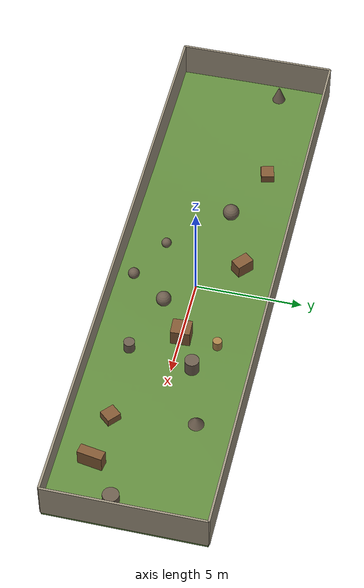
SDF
<?xml version='1.0' encoding='utf-8'?>
<sdf version="1.7">
  <world name="terrain_2">
    <gravity>0 0 -9.8</gravity>
    <plugin name="gazebo_ros_state" filename="libgazebo_ros_state.so">
      <ros>
        <namespace>/gazebo</namespace>
      </ros>
    </plugin>
    <physics name="ode_physics" type="ode">
      <max_step_size>0.001</max_step_size>
      <real_time_factor>1</real_time_factor>
      <real_time_update_rate>1000</real_time_update_rate>
      <ode>
        <solver>
          <type>quick</type>
          <iters>150</iters>
          <sor>1.3</sor>
        </solver>
        <constraints>
          <cfm>0</cfm>
          <erp>0.2</erp>
          <contact_max_correcting_vel>0.2</contact_max_correcting_vel>
          <contact_surface_layer>0.001</contact_surface_layer>
        </constraints>
      </ode>
    </physics>
    <light name="sun" type="directional">
      <pose>0 0 42 0 0 0</pose>
      <diffuse>0.92 0.91 0.88 1</diffuse>
      <specular>0.18 0.18 0.16 1</specular>
      <direction>-0.35 -0.28 -0.9</direction>
      <cast_shadows>true</cast_shadows>
    </light>
    <light name="fill" type="point">
      <pose>0 0 6 0 0 0</pose>
      <diffuse>0.35 0.36 0.34 1</diffuse>
      <specular>0.02 0.02 0.02 1</specular>
      <cast_shadows>false</cast_shadows>
      <attenuation>
        <range>80</range>
        <constant>0.5</constant>
        <linear>0.02</linear>
      </attenuation>
    </light>
    <scene>
      <ambient>0.52 0.56 0.48 1</ambient>
      <background>0.58 0.76 0.92 1</background>
    </scene>
    <gui fullscreen="false">
      <camera name="user_camera">
        <pose>18.9 -6.62727273 22.95 0 0.65 2.2</pose>
        <view_controller>orbit</view_controller>
      </camera>
    </gui>
    <model name="terrain_2_structure">
      <static>true</static>
      <link name="structure">
        <collision name="ground_surface_collision">
          <pose>0 0 0 0 0 0</pose>
          <geometry>
            <mesh>
              <uri>3DModel/terrain/surfaces/terrain_2_ground_surface.stl</uri>
            </mesh>
          </geometry>
          <max_contacts>40</max_contacts>
          <surface>
            <friction>
              <ode>
                <mu>8</mu>
                <mu2>8</mu2>
              </ode>
            </friction>
            <contact>
              <ode>
                <kp>1e7</kp>
                <kd>1000</kd>
                <max_vel>0.1</max_vel>
                <min_depth>0.001</min_depth>
              </ode>
            </contact>
          </surface>
        </collision>
        <visual name="ground_surface_visual">
          <pose>0 0 0 0 0 0</pose>
          <geometry>
            <mesh>
              <uri>3DModel/terrain/surfaces/terrain_2_ground_surface.stl</uri>
            </mesh>
          </geometry>
          <material>
            <ambient>0.38 0.54 0.24 1</ambient>
            <diffuse>0.38 0.54 0.24 1</diffuse>
          </material>
        </visual>
        <collision name="rock_box_0_collision">
          <pose>-7.36363636 1.84090909 0.247232489 0 0 0.252157693</pose>
          <geometry>
            <box>
              <size>0.675 0.613636364 0.398863636</size>
            </box>
          </geometry>
          <max_contacts>40</max_contacts>
          <surface>
            <friction>
              <ode>
                <mu>2</mu>
                <mu2>2</mu2>
              </ode>
            </friction>
            <contact>
              <ode>
                <kp>1e7</kp>
                <kd>1000</kd>
                <max_vel>0.1</max_vel>
                <min_depth>0.001</min_depth>
              </ode>
            </contact>
          </surface>
        </collision>
        <visual name="rock_box_0_visual">
          <pose>-7.36363636 1.84090909 0.247232489 0 0 0.252157693</pose>
          <geometry>
            <box>
              <size>0.675 0.613636364 0.398863636</size>
            </box>
          </geometry>
          <material>
            <ambient>0.50 0.34 0.20 1</ambient>
            <diffuse>0.50 0.34 0.20 1</diffuse>
          </material>
        </visual>
        <collision name="rock_round_1_collision">
          <pose>-1.84090909 -1.84090909 0.519823254 0 0 0</pose>
          <geometry>
            <sphere>
              <radius>0.23318181818181818</radius>
            </sphere>
          </geometry>
          <max_contacts>40</max_contacts>
          <surface>
            <friction>
              <ode>
                <mu>2</mu>
                <mu2>2</mu2>
              </ode>
            </friction>
            <contact>
              <ode>
                <kp>1e7</kp>
                <kd>1000</kd>
                <max_vel>0.1</max_vel>
                <min_depth>0.001</min_depth>
              </ode>
            </contact>
          </surface>
        </collision>
        <visual name="rock_round_1_visual">
          <pose>-1.84090909 -1.84090909 0.519823254 0 0 0</pose>
          <geometry>
            <sphere>
              <radius>0.23318181818181818</radius>
            </sphere>
          </geometry>
          <material>
            <ambient>0.42 0.36 0.30 1</ambient>
            <diffuse>0.42 0.36 0.30 1</diffuse>
          </material>
        </visual>
        <collision name="stone_column_2_collision">
          <pose>3.68181818 1.84090909 0.83729198 0 0 0</pose>
          <geometry>
            <cylinder>
              <radius>0.20863636363636365</radius>
              <length>0.49090909090909096</length>
            </cylinder>
          </geometry>
          <max_contacts>40</max_contacts>
          <surface>
            <friction>
              <ode>
                <mu>2</mu>
                <mu2>2</mu2>
              </ode>
            </friction>
            <contact>
              <ode>
                <kp>1e7</kp>
                <kd>1000</kd>
                <max_vel>0.1</max_vel>
                <min_depth>0.001</min_depth>
              </ode>
            </contact>
          </surface>
        </collision>
        <visual name="stone_column_2_visual">
          <pose>3.68181818 1.84090909 0.83729198 0 0 0</pose>
          <geometry>
            <cylinder>
              <radius>0.20863636363636365</radius>
              <length>0.49090909090909096</length>
            </cylinder>
          </geometry>
          <material>
            <ambient>0.66 0.50 0.28 1</ambient>
            <diffuse>0.66 0.50 0.28 1</diffuse>
          </material>
        </visual>
        <collision name="rock_box_3_collision">
          <pose>8.59090909 -1.84090909 0.873967674 0 0 -0.715763862</pose>
          <geometry>
            <box>
              <size>0.675 0.613636364 0.398863636</size>
            </box>
          </geometry>
          <max_contacts>40</max_contacts>
          <surface>
            <friction>
              <ode>
                <mu>2</mu>
                <mu2>2</mu2>
              </ode>
            </friction>
            <contact>
              <ode>
                <kp>1e7</kp>
                <kd>1000</kd>
                <max_vel>0.1</max_vel>
                <min_depth>0.001</min_depth>
              </ode>
            </contact>
          </surface>
        </collision>
        <visual name="rock_box_3_visual">
          <pose>8.59090909 -1.84090909 0.873967674 0 0 -0.715763862</pose>
          <geometry>
            <box>
              <size>0.675 0.613636364 0.398863636</size>
            </box>
          </geometry>
          <material>
            <ambient>0.50 0.34 0.20 1</ambient>
            <diffuse>0.50 0.34 0.20 1</diffuse>
          </material>
        </visual>
        <collision name="boundary_0_collision">
          <pose>0 -3.68181818 0.859090909 0 0 0</pose>
          <geometry>
            <box>
              <size>27 0.0981818182 1.84090909</size>
            </box>
          </geometry>
          <max_contacts>40</max_contacts>
          <surface>
            <friction>
              <ode>
                <mu>2</mu>
                <mu2>2</mu2>
              </ode>
            </friction>
            <contact>
              <ode>
                <kp>1e7</kp>
                <kd>1000</kd>
                <max_vel>0.1</max_vel>
                <min_depth>0.001</min_depth>
              </ode>
            </contact>
          </surface>
        </collision>
        <visual name="boundary_0_visual">
          <pose>0 -3.68181818 0.859090909 0 0 0</pose>
          <geometry>
            <box>
              <size>27 0.0981818182 1.84090909</size>
            </box>
          </geometry>
          <material>
            <ambient>0.62 0.58 0.50 1</ambient>
            <diffuse>0.62 0.58 0.50 1</diffuse>
          </material>
        </visual>
        <collision name="boundary_1_collision">
          <pose>13.5 0 0.859090909 0 0 1.57079633</pose>
          <geometry>
            <box>
              <size>7.36363636 0.0981818182 1.84090909</size>
            </box>
          </geometry>
          <max_contacts>40</max_contacts>
          <surface>
            <friction>
              <ode>
                <mu>2</mu>
                <mu2>2</mu2>
              </ode>
            </friction>
            <contact>
              <ode>
                <kp>1e7</kp>
                <kd>1000</kd>
                <max_vel>0.1</max_vel>
                <min_depth>0.001</min_depth>
              </ode>
            </contact>
          </surface>
        </collision>
        <visual name="boundary_1_visual">
          <pose>13.5 0 0.859090909 0 0 1.57079633</pose>
          <geometry>
            <box>
              <size>7.36363636 0.0981818182 1.84090909</size>
            </box>
          </geometry>
          <material>
            <ambient>0.62 0.58 0.50 1</ambient>
            <diffuse>0.62 0.58 0.50 1</diffuse>
          </material>
        </visual>
        <collision name="boundary_2_collision">
          <pose>0 3.68181818 0.859090909 0 0 3.14159265</pose>
          <geometry>
            <box>
              <size>27 0.0981818182 1.84090909</size>
            </box>
          </geometry>
          <max_contacts>40</max_contacts>
          <surface>
            <friction>
              <ode>
                <mu>2</mu>
                <mu2>2</mu2>
              </ode>
            </friction>
            <contact>
              <ode>
                <kp>1e7</kp>
                <kd>1000</kd>
                <max_vel>0.1</max_vel>
                <min_depth>0.001</min_depth>
              </ode>
            </contact>
          </surface>
        </collision>
        <visual name="boundary_2_visual">
          <pose>0 3.68181818 0.859090909 0 0 3.14159265</pose>
          <geometry>
            <box>
              <size>27 0.0981818182 1.84090909</size>
            </box>
          </geometry>
          <material>
            <ambient>0.62 0.58 0.50 1</ambient>
            <diffuse>0.62 0.58 0.50 1</diffuse>
          </material>
        </visual>
        <collision name="boundary_3_collision">
          <pose>-13.5 0 0.859090909 0 0 -1.57079633</pose>
          <geometry>
            <box>
              <size>7.36363636 0.0981818182 1.84090909</size>
            </box>
          </geometry>
          <max_contacts>40</max_contacts>
          <surface>
            <friction>
              <ode>
                <mu>2</mu>
                <mu2>2</mu2>
              </ode>
            </friction>
            <contact>
              <ode>
                <kp>1e7</kp>
                <kd>1000</kd>
                <max_vel>0.1</max_vel>
                <min_depth>0.001</min_depth>
              </ode>
            </contact>
          </surface>
        </collision>
        <visual name="boundary_3_visual">
          <pose>-13.5 0 0.859090909 0 0 -1.57079633</pose>
          <geometry>
            <box>
              <size>7.36363636 0.0981818182 1.84090909</size>
            </box>
          </geometry>
          <material>
            <ambient>0.62 0.58 0.50 1</ambient>
            <diffuse>0.62 0.58 0.50 1</diffuse>
          </material>
        </visual>
        <collision name="irregular_prop_0_collision">
          <pose>3.52605402 0.14693548 1.00917888 0 0 -1.52039342</pose>
          <geometry>
            <box>
              <size>0.897526773 0.796967811 0.824718119</size>
            </box>
          </geometry>
          <max_contacts>40</max_contacts>
          <surface>
            <friction>
              <ode>
                <mu>2</mu>
                <mu2>2</mu2>
              </ode>
            </friction>
            <contact>
              <ode>
                <kp>1e7</kp>
                <kd>1000</kd>
                <max_vel>0.1</max_vel>
                <min_depth>0.001</min_depth>
              </ode>
            </contact>
          </surface>
        </collision>
        <visual name="irregular_prop_0_visual">
          <pose>3.52605402 0.14693548 1.00917888 0 0 -1.52039342</pose>
          <geometry>
            <box>
              <size>0.897526773 0.796967811 0.824718119</size>
            </box>
          </geometry>
          <material>
            <ambient>0.50 0.34 0.20 1</ambient>
            <diffuse>0.50 0.34 0.20 1</diffuse>
          </material>
        </visual>
        <collision name="irregular_prop_1_collision">
          <pose>4.68234577 -1.98848086 0.886539426 0 0 -1.4403284</pose>
          <geometry>
            <cylinder>
              <radius>0.25570458080539726</radius>
              <length>0.5300926638557665</length>
            </cylinder>
          </geometry>
          <max_contacts>40</max_contacts>
          <surface>
            <friction>
              <ode>
                <mu>2</mu>
                <mu2>2</mu2>
              </ode>
            </friction>
            <contact>
              <ode>
                <kp>1e7</kp>
                <kd>1000</kd>
                <max_vel>0.1</max_vel>
                <min_depth>0.001</min_depth>
              </ode>
            </contact>
          </surface>
        </collision>
        <visual name="irregular_prop_1_visual">
          <pose>4.68234577 -1.98848086 0.886539426 0 0 -1.4403284</pose>
          <geometry>
            <cylinder>
              <radius>0.25570458080539726</radius>
              <length>0.5300926638557665</length>
            </cylinder>
          </geometry>
          <material>
            <ambient>0.42 0.36 0.30 1</ambient>
            <diffuse>0.42 0.36 0.30 1</diffuse>
          </material>
        </visual>
        <collision name="irregular_prop_2_collision">
          <pose>-4.36321673 0.703447508 0.519935062 0 0 -3.02401162</pose>
          <geometry>
            <sphere>
              <radius>0.38494449460127217</radius>
            </sphere>
          </geometry>
          <max_contacts>40</max_contacts>
          <surface>
            <friction>
              <ode>
                <mu>2</mu>
                <mu2>2</mu2>
              </ode>
            </friction>
            <contact>
              <ode>
                <kp>1e7</kp>
                <kd>1000</kd>
                <max_vel>0.1</max_vel>
                <min_depth>0.001</min_depth>
              </ode>
            </contact>
          </surface>
        </collision>
        <visual name="irregular_prop_2_visual">
          <pose>-4.36321673 0.703447508 0.519935062 0 0 -3.02401162</pose>
          <geometry>
            <sphere>
              <radius>0.38494449460127217</radius>
            </sphere>
          </geometry>
          <material>
            <ambient>0.42 0.36 0.30 1</ambient>
            <diffuse>0.42 0.36 0.30 1</diffuse>
          </material>
        </visual>
        <collision name="irregular_prop_3_collision">
          <pose>0 0 0 0 0 0</pose>
          <geometry>
            <mesh>
              <uri>3DModel/terrain/surfaces/terrain_2_irregular_prop_3.stl</uri>
            </mesh>
          </geometry>
          <max_contacts>40</max_contacts>
          <surface>
            <friction>
              <ode>
                <mu>8</mu>
                <mu2>8</mu2>
              </ode>
            </friction>
            <contact>
              <ode>
                <kp>1e7</kp>
                <kd>1000</kd>
                <max_vel>0.1</max_vel>
                <min_depth>0.001</min_depth>
              </ode>
            </contact>
          </surface>
        </collision>
        <visual name="irregular_prop_3_visual">
          <pose>0 0 0 0 0 0</pose>
          <geometry>
            <mesh>
              <uri>3DModel/terrain/surfaces/terrain_2_irregular_prop_3.stl</uri>
            </mesh>
          </geometry>
          <material>
            <ambient>0.42 0.36 0.30 1</ambient>
            <diffuse>0.42 0.36 0.30 1</diffuse>
          </material>
        </visual>
        <collision name="irregular_prop_4_collision">
          <pose>-1.18040939 1.9350998 0.669952897 0 0 -2.27437032</pose>
          <geometry>
            <box>
              <size>0.571917563 0.835448006 0.681564383</size>
            </box>
          </geometry>
          <max_contacts>40</max_contacts>
          <surface>
            <friction>
              <ode>
                <mu>2</mu>
                <mu2>2</mu2>
              </ode>
            </friction>
            <contact>
              <ode>
                <kp>1e7</kp>
                <kd>1000</kd>
                <max_vel>0.1</max_vel>
                <min_depth>0.001</min_depth>
              </ode>
            </contact>
          </surface>
        </collision>
        <visual name="irregular_prop_4_visual">
          <pose>-1.18040939 1.9350998 0.669952897 0 0 -2.27437032</pose>
          <geometry>
            <box>
              <size>0.571917563 0.835448006 0.681564383</size>
            </box>
          </geometry>
          <material>
            <ambient>0.50 0.34 0.20 1</ambient>
            <diffuse>0.50 0.34 0.20 1</diffuse>
          </material>
        </visual>
        <collision name="irregular_prop_5_collision">
          <pose>12.6968608 -0.769827334 0.87173921 0 0 -0.4212369</pose>
          <geometry>
            <cylinder>
              <radius>0.3725413363198869</radius>
              <length>0.4359778927498049</length>
            </cylinder>
          </geometry>
          <max_contacts>40</max_contacts>
          <surface>
            <friction>
              <ode>
                <mu>2</mu>
                <mu2>2</mu2>
              </ode>
            </friction>
            <contact>
              <ode>
                <kp>1e7</kp>
                <kd>1000</kd>
                <max_vel>0.1</max_vel>
                <min_depth>0.001</min_depth>
              </ode>
            </contact>
          </surface>
        </collision>
        <visual name="irregular_prop_5_visual">
          <pose>12.6968608 -0.769827334 0.87173921 0 0 -0.4212369</pose>
          <geometry>
            <cylinder>
              <radius>0.3725413363198869</radius>
              <length>0.4359778927498049</length>
            </cylinder>
          </geometry>
          <material>
            <ambient>0.42 0.36 0.30 1</ambient>
            <diffuse>0.42 0.36 0.30 1</diffuse>
          </material>
        </visual>
        <collision name="irregular_prop_6_collision">
          <pose>0.424291257 -2.84764414 0.693496889 0 0 -2.69786196</pose>
          <geometry>
            <sphere>
              <radius>0.2650390949673091</radius>
            </sphere>
          </geometry>
          <max_contacts>40</max_contacts>
          <surface>
            <friction>
              <ode>
                <mu>2</mu>
                <mu2>2</mu2>
              </ode>
            </friction>
            <contact>
              <ode>
                <kp>1e7</kp>
                <kd>1000</kd>
                <max_vel>0.1</max_vel>
                <min_depth>0.001</min_depth>
              </ode>
            </contact>
          </surface>
        </collision>
        <visual name="irregular_prop_6_visual">
          <pose>0.424291257 -2.84764414 0.693496889 0 0 -2.69786196</pose>
          <geometry>
            <sphere>
              <radius>0.2650390949673091</radius>
            </sphere>
          </geometry>
          <material>
            <ambient>0.42 0.36 0.30 1</ambient>
            <diffuse>0.42 0.36 0.30 1</diffuse>
          </material>
        </visual>
        <collision name="irregular_prop_7_collision">
          <pose>0 0 0 0 0 0</pose>
          <geometry>
            <mesh>
              <uri>3DModel/terrain/surfaces/terrain_2_irregular_prop_7.stl</uri>
            </mesh>
          </geometry>
          <max_contacts>40</max_contacts>
          <surface>
            <friction>
              <ode>
                <mu>8</mu>
                <mu2>8</mu2>
              </ode>
            </friction>
            <contact>
              <ode>
                <kp>1e7</kp>
                <kd>1000</kd>
                <max_vel>0.1</max_vel>
                <min_depth>0.001</min_depth>
              </ode>
            </contact>
          </surface>
        </collision>
        <visual name="irregular_prop_7_visual">
          <pose>0 0 0 0 0 0</pose>
          <geometry>
            <mesh>
              <uri>3DModel/terrain/surfaces/terrain_2_irregular_prop_7.stl</uri>
            </mesh>
          </geometry>
          <material>
            <ambient>0.42 0.36 0.30 1</ambient>
            <diffuse>0.42 0.36 0.30 1</diffuse>
          </material>
        </visual>
        <collision name="irregular_prop_8_collision">
          <pose>11.0326809 -2.05128993 1.07359204 0 0 -1.73854028</pose>
          <geometry>
            <box>
              <size>1.1443229 0.456709303 0.812046689</size>
            </box>
          </geometry>
          <max_contacts>40</max_contacts>
          <surface>
            <friction>
              <ode>
                <mu>2</mu>
                <mu2>2</mu2>
              </ode>
            </friction>
            <contact>
              <ode>
                <kp>1e7</kp>
                <kd>1000</kd>
                <max_vel>0.1</max_vel>
                <min_depth>0.001</min_depth>
              </ode>
            </contact>
          </surface>
        </collision>
        <visual name="irregular_prop_8_visual">
          <pose>11.0326809 -2.05128993 1.07359204 0 0 -1.73854028</pose>
          <geometry>
            <box>
              <size>1.1443229 0.456709303 0.812046689</size>
            </box>
          </geometry>
          <material>
            <ambient>0.50 0.34 0.20 1</ambient>
            <diffuse>0.50 0.34 0.20 1</diffuse>
          </material>
        </visual>
        <collision name="irregular_prop_9_collision">
          <pose>5.20397242 1.02143468 1.00965341 0 0 0.439125164</pose>
          <geometry>
            <cylinder>
              <radius>0.3291050014733087</radius>
              <length>0.7284059210901803</length>
            </cylinder>
          </geometry>
          <max_contacts>40</max_contacts>
          <surface>
            <friction>
              <ode>
                <mu>2</mu>
                <mu2>2</mu2>
              </ode>
            </friction>
            <contact>
              <ode>
                <kp>1e7</kp>
                <kd>1000</kd>
                <max_vel>0.1</max_vel>
                <min_depth>0.001</min_depth>
              </ode>
            </contact>
          </surface>
        </collision>
        <visual name="irregular_prop_9_visual">
          <pose>5.20397242 1.02143468 1.00965341 0 0 0.439125164</pose>
          <geometry>
            <cylinder>
              <radius>0.3291050014733087</radius>
              <length>0.7284059210901803</length>
            </cylinder>
          </geometry>
          <material>
            <ambient>0.42 0.36 0.30 1</ambient>
            <diffuse>0.42 0.36 0.30 1</diffuse>
          </material>
        </visual>
        <collision name="irregular_prop_10_collision">
          <pose>1.71042887 -1.11595894 0.859853305 0 0 -2.60452415</pose>
          <geometry>
            <sphere>
              <radius>0.3523278495800145</radius>
            </sphere>
          </geometry>
          <max_contacts>40</max_contacts>
          <surface>
            <friction>
              <ode>
                <mu>2</mu>
                <mu2>2</mu2>
              </ode>
            </friction>
            <contact>
              <ode>
                <kp>1e7</kp>
                <kd>1000</kd>
                <max_vel>0.1</max_vel>
                <min_depth>0.001</min_depth>
              </ode>
            </contact>
          </surface>
        </collision>
        <visual name="irregular_prop_10_visual">
          <pose>1.71042887 -1.11595894 0.859853305 0 0 -2.60452415</pose>
          <geometry>
            <sphere>
              <radius>0.3523278495800145</radius>
            </sphere>
          </geometry>
          <material>
            <ambient>0.42 0.36 0.30 1</ambient>
            <diffuse>0.42 0.36 0.30 1</diffuse>
          </material>
        </visual>
      </link>
    </model>
  </world>
</sdf>
